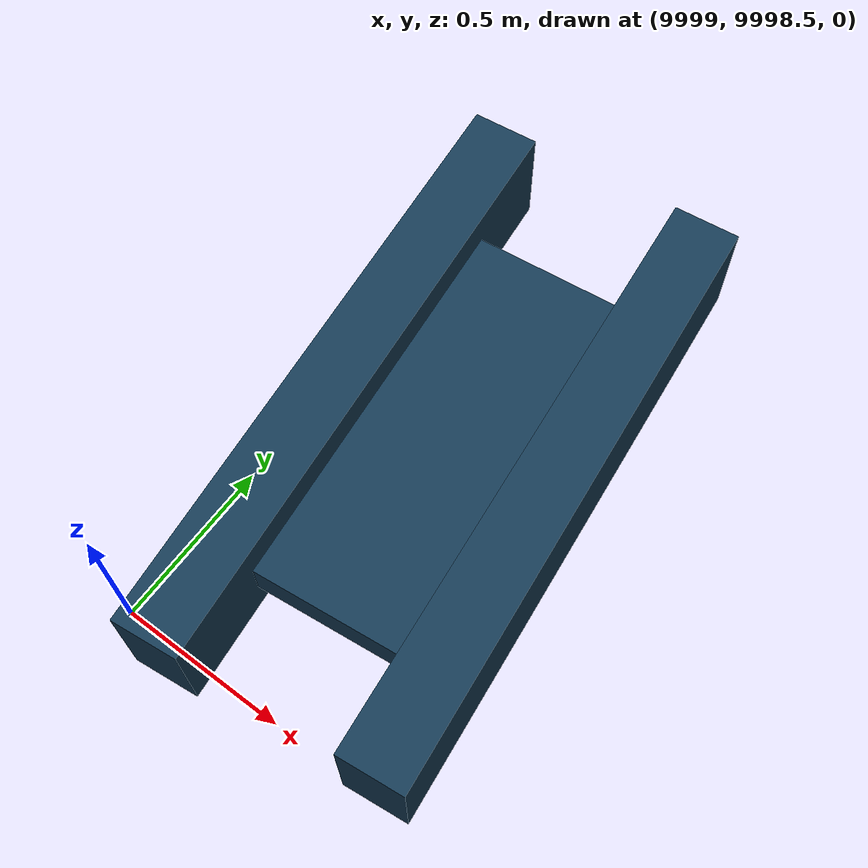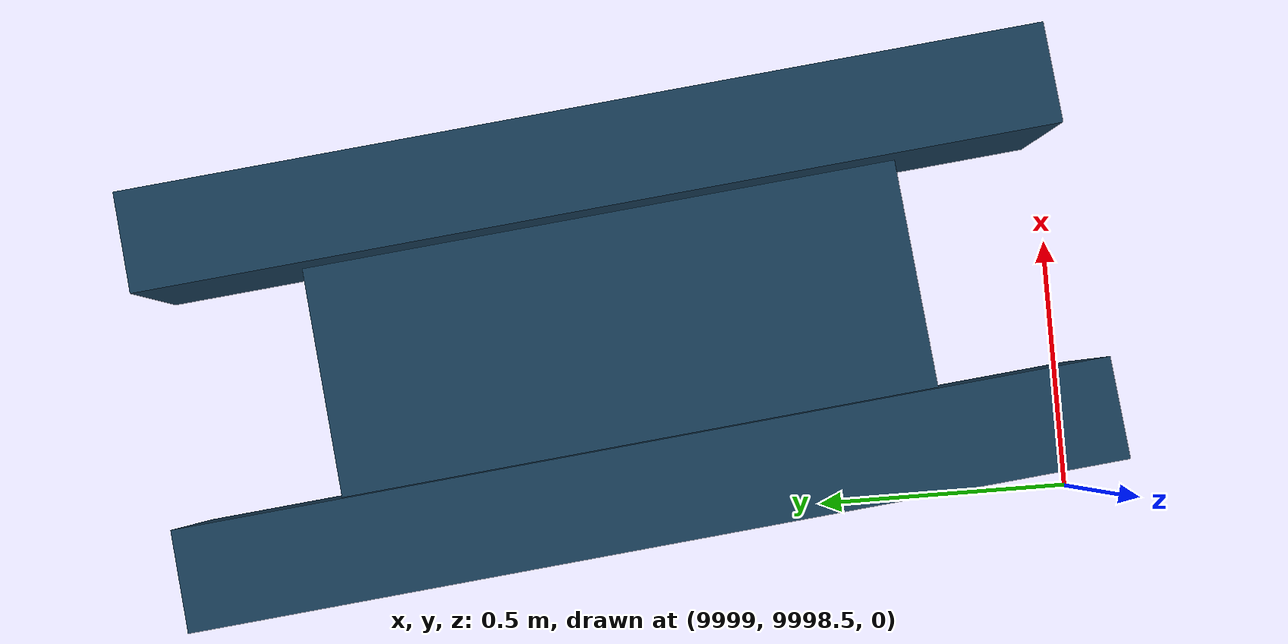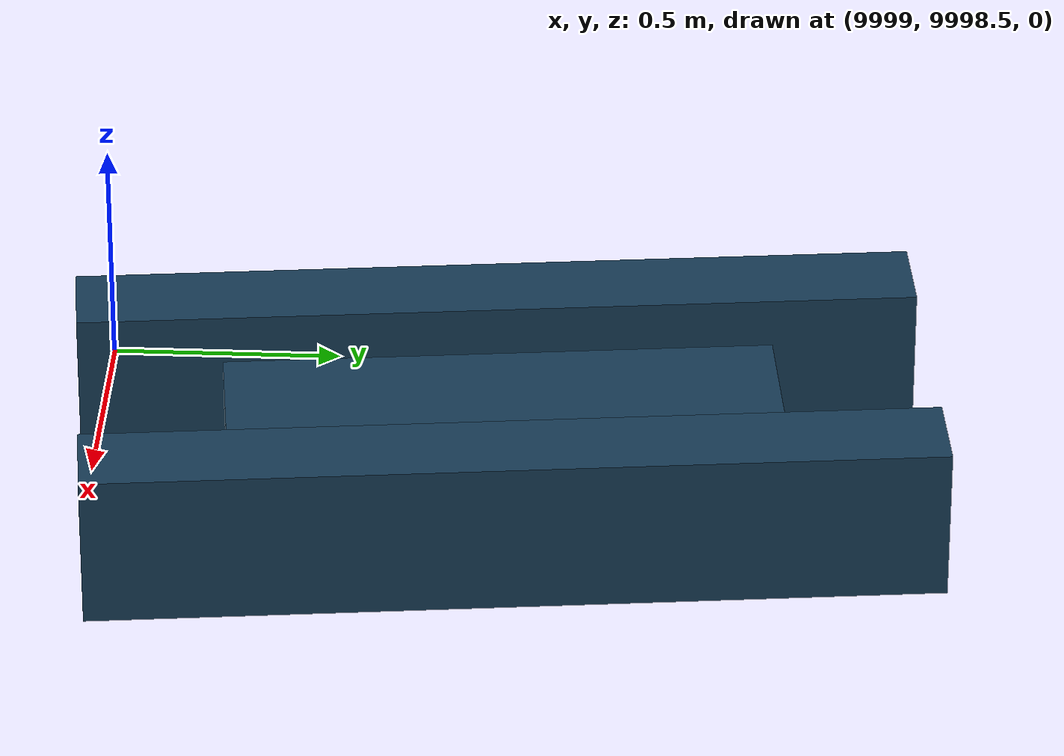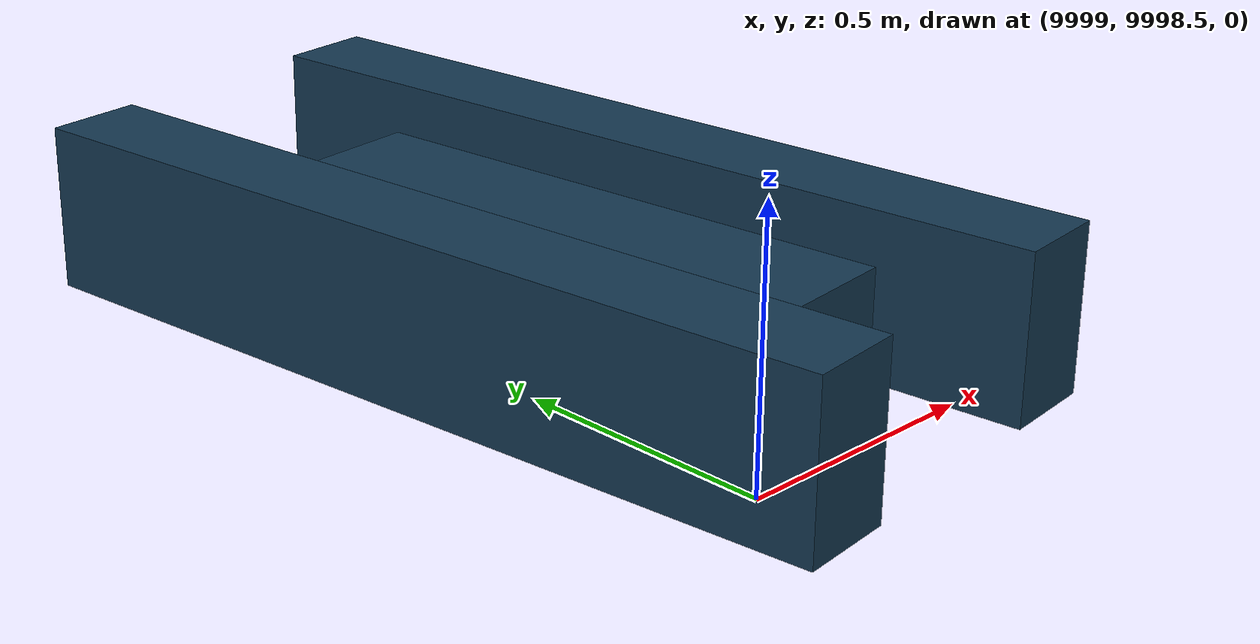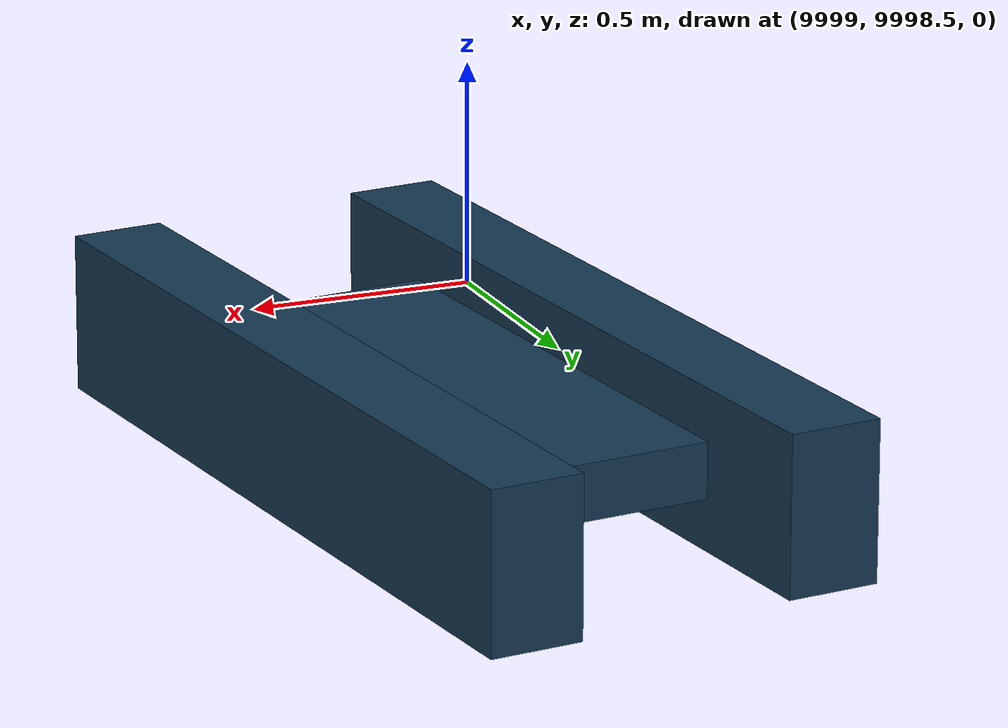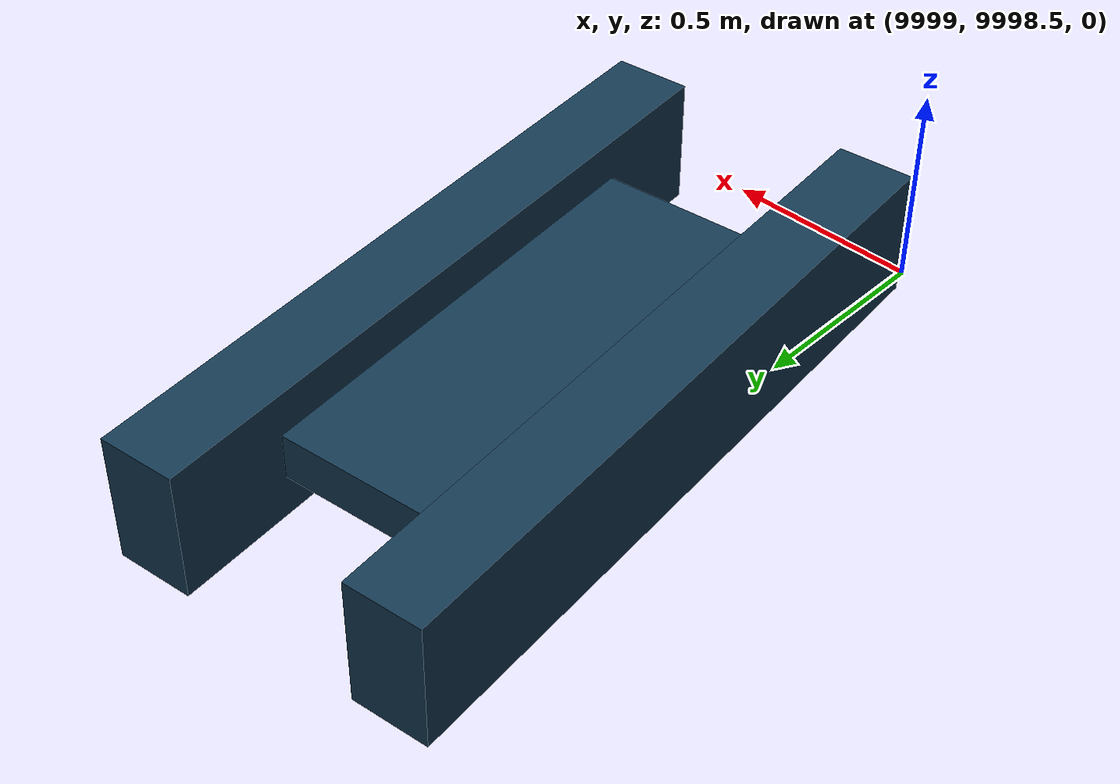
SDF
<?xml version="1.0"?>
<sdf version="1.10"><world name="surveyor_vrx"><physics name="vrx_physics" type="dart"><max_step_size>0.05</max_step_size><real_time_factor>1</real_time_factor></physics><gravity>0 0 -9.81</gravity><include><uri>model://surveyor</uri><pose>9999.383775736671 9999.382917501032 0.05 0 0 1.6783683922330475</pose></include><plugin filename="gz-sim-physics-system" name="gz::sim::systems::Physics"/><plugin filename="gz-sim-user-commands-system" name="gz::sim::systems::UserCommands"/><plugin filename="gz-sim-scene-broadcaster-system" name="gz::sim::systems::SceneBroadcaster"/><plugin filename="gz-sim-sensors-system" name="gz::sim::systems::Sensors"/><plugin filename="gz-sim-imu-system" name="gz::sim::systems::Imu"/><plugin filename="gz-sim-navsat-system" name="gz::sim::systems::NavSat"/><plugin filename="libUSVWind.so" name="vrx::USVWind"><wind_obj><name>surveyor</name><link_name>surveyor::base_link</link_name><coeff_vector>0.25754575 0.51783225 0</coeff_vector></wind_obj><wind_direction>20.984223000705242</wind_direction><wind_mean_velocity>1.5341570172458887</wind_mean_velocity><var_wind_gain_constants>0</var_wind_gain_constants><var_wind_time_constants>2</var_wind_time_constants><random_seed>20018</random_seed><update_rate>10</update_rate><topic_wind_speed>/vrx/debug/wind/speed</topic_wind_speed><topic_wind_direction>/vrx/debug/wind/direction</topic_wind_direction></plugin></world></sdf>

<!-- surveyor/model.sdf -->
<sdf version="1.10">
  <model name="surveyor">
    <link name="base_link">
      <inertial><pose>0.007543520309477757 0 0 0 0 0</pose><mass>51.699999999999996</mass><inertia><ixx>5.309042500000001</ixx><iyy>13.090471693745972</iyy><izz>17.569042860412644</izz><ixy>0</ixy><ixz>0</ixz><iyz>0</iyz></inertia></inertial>
      <collision name="port_pontoon_collision"><pose>0 -0.33 0 0 0 0</pose><geometry><box><size>1.83 0.2 0.34</size></box></geometry></collision>
      <visual name="port_pontoon_visual"><pose>0 -0.33 0 0 0 0</pose><geometry><box><size>1.83 0.2 0.34</size></box></geometry><material><diffuse>0.08 0.22 0.32 1</diffuse></material></visual>
      <collision name="starboard_pontoon_collision"><pose>0 0.33 0 0 0 0</pose><geometry><box><size>1.83 0.2 0.34</size></box></geometry></collision>
      <visual name="starboard_pontoon_visual"><pose>0 0.33 0 0 0 0</pose><geometry><box><size>1.83 0.2 0.34</size></box></geometry><material><diffuse>0.08 0.22 0.32 1</diffuse></material></visual>
      <collision name="deck_payload_and_superstructure_collision"><pose>0 0 0 0 0 0</pose><geometry><box><size>1.2 0.55 0.12</size></box></geometry></collision>
      <visual name="deck_payload_and_superstructure_visual"><pose>0 0 0 0 0 0</pose><geometry><box><size>1.2 0.55 0.12</size></box></geometry><material><diffuse>0.08 0.22 0.32 1</diffuse></material></visual>
      <sensor name="task_imu" type="imu"><always_on>true</always_on><update_rate>20</update_rate><topic>imu</topic></sensor>
      <sensor name="task_gps" type="navsat"><always_on>true</always_on><update_rate>20</update_rate><topic>gps</topic></sensor>
    </link>
    <plugin filename="libSurface.so" name="vrx::Surface"><link_name>base_link</link_name><hull_length>1.83</hull_length><hull_radius>0.17</hull_radius><fluid_level>0</fluid_level><fluid_density>1025</fluid_density><points><point>0.4575 -0.33 0</point><point>-0.4575 -0.33 0</point></points><wavefield><topic>/vrx/wavefield/parameters</topic></wavefield></plugin>
    <plugin filename="libSurface.so" name="vrx::Surface"><link_name>base_link</link_name><hull_length>1.83</hull_length><hull_radius>0.17</hull_radius><fluid_level>0</fluid_level><fluid_density>1025</fluid_density><points><point>0.4575 0.33 0</point><point>-0.4575 0.33 0</point></points><wavefield><topic>/vrx/wavefield/parameters</topic></wavefield></plugin>
    <plugin filename="libSimpleHydrodynamics.so" name="vrx::SimpleHydrodynamics"><link_name>base_link</link_name><xDotU>0</xDotU><yDotV>0</yDotV><nDotR>0</nDotR><xU>6</xU><xUU>18</xUU><yV>18</yV><yVV>60</yVV><zW>0</zW><kP>0</kP><mQ>0</mQ><nR>8</nR><nRR>12</nRR></plugin>
    <link name="port_propeller"><pose relative_to="base_link">-0.65 0.33 0 0 0 0</pose><inertial><mass>0.3</mass><inertia><ixx>0.000375</ixx><iyy>0.0001975</iyy><izz>0.0001975</izz><ixy>0</ixy><ixz>0</ixz><iyz>0</iyz></inertia></inertial></link>
    <joint name="port_propeller_joint" type="revolute"><parent>base_link</parent><child>port_propeller</child><axis><xyz>1 0 0</xyz><dynamics><damping>0.010132118364233778</damping></dynamics></axis></joint>
    <plugin filename="gz-sim-thruster-system" name="gz::sim::systems::Thruster"><joint_name>port_propeller_joint</joint_name><thrust_coefficient>0.006919495468257212</thrust_coefficient><fluid_density>1025</fluid_density><propeller_diameter>0.1</propeller_diameter><velocity_control>true</velocity_control><min_thrust_cmd>-70</min_thrust_cmd><max_thrust_cmd>70</max_thrust_cmd><namespace>surveyor</namespace><topic>thrusters/port/thrust</topic></plugin>
    <link name="starboard_propeller"><pose relative_to="base_link">-0.65 -0.33 0 0 0 0</pose><inertial><mass>0.3</mass><inertia><ixx>0.000375</ixx><iyy>0.0001975</iyy><izz>0.0001975</izz><ixy>0</ixy><ixz>0</ixz><iyz>0</iyz></inertia></inertial></link>
    <joint name="starboard_propeller_joint" type="revolute"><parent>base_link</parent><child>starboard_propeller</child><axis><xyz>1 0 0</xyz><dynamics><damping>0.010132118364233778</damping></dynamics></axis></joint>
    <plugin filename="gz-sim-thruster-system" name="gz::sim::systems::Thruster"><joint_name>starboard_propeller_joint</joint_name><thrust_coefficient>0.006919495468257212</thrust_coefficient><fluid_density>1025</fluid_density><propeller_diameter>0.1</propeller_diameter><velocity_control>true</velocity_control><min_thrust_cmd>-70</min_thrust_cmd><max_thrust_cmd>70</max_thrust_cmd><namespace>surveyor</namespace><topic>thrusters/starboard/thrust</topic></plugin>
    <plugin filename="gz-sim-pose-publisher-system" name="gz::sim::systems::PosePublisher"><publish_model_pose>true</publish_model_pose><publish_link_pose>true</publish_link_pose><use_pose_vector_msg>true</use_pose_vector_msg><static_publisher>false</static_publisher></plugin>
    <plugin filename="gz-sim-odometry-publisher-system" name="gz::sim::systems::OdometryPublisher"><odom_publish_frequency>20</odom_publish_frequency><odom_topic>odometry</odom_topic><dimensions>3</dimensions></plugin>
  <plugin filename="libVrxCurrentRelativeVelocity.so" name="vrx_surveyor::CurrentRelativeVelocity"><link_name>base_link</link_name><current_enu>0.18034179079971657 0.0679426986895115 0</current_enu><xU>6</xU><xUU>18</xUU><yV>18</yV><yVV>60</yVV></plugin></model>
</sdf>
